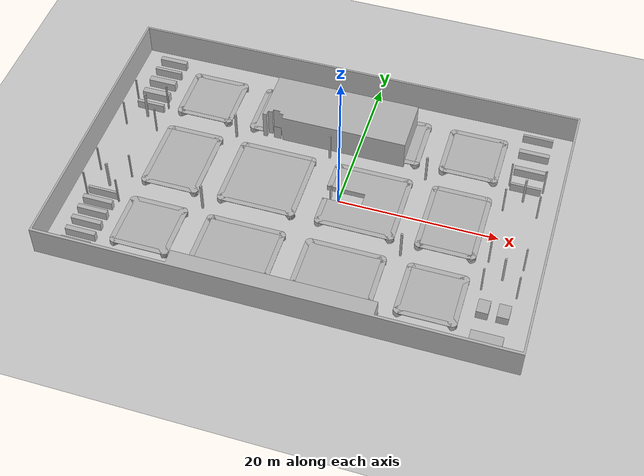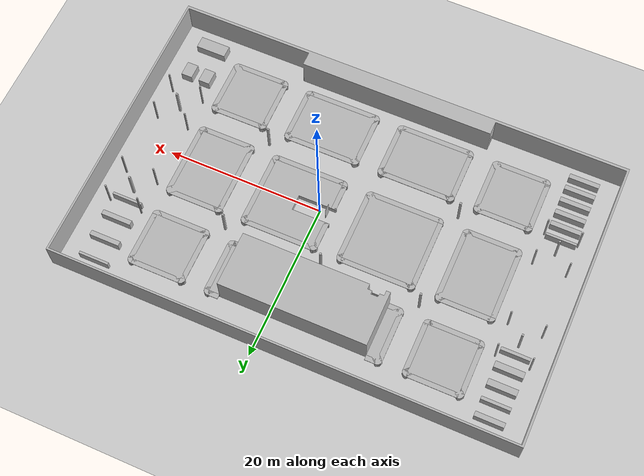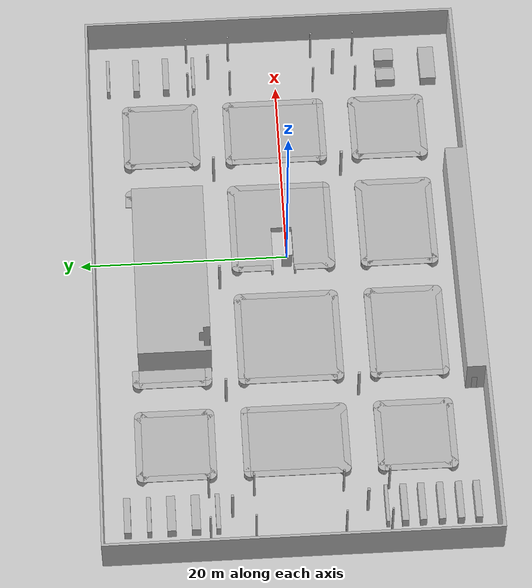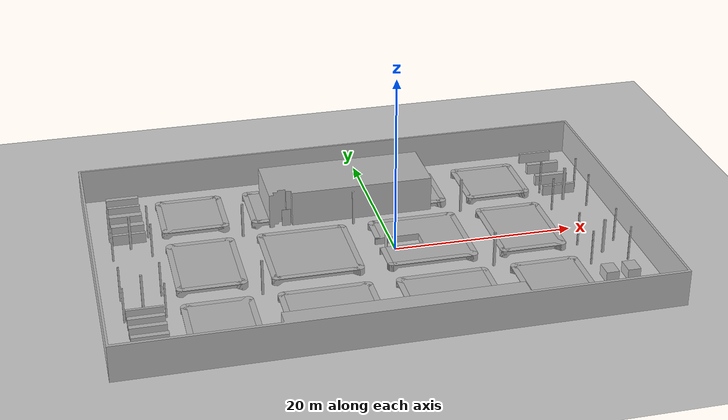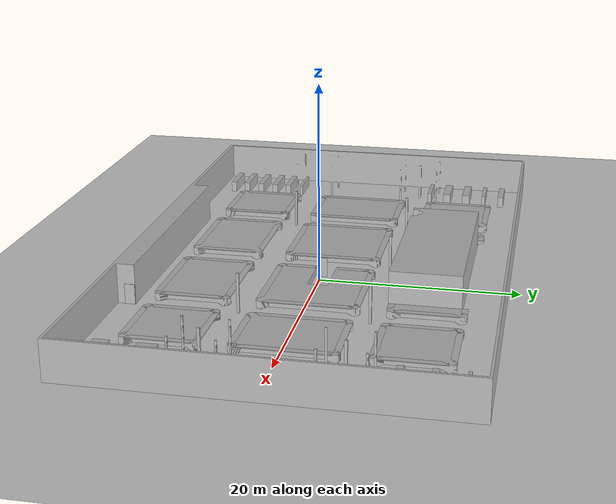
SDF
<sdf version="1.6">
 <world name="tue_library">
  <light name="sun" type="directional">
   <direction>0.5 0.1 -0.9</direction>
   <pose>0 0 10 0 0 0</pose>
   <specular>0.2 0.2 0.2 1</specular>
   <diffuse>0.8 0.8 0.8 1</diffuse>
   <attenuation>
    <range>1000</range>
    <quadratic>0.001</quadratic>
    <constant>0.9</constant>
    <linear>0.01</linear>
   </attenuation>
  </light>
  <include><name>floor</name><uri>model://ground_plane</uri></include>
  <include><name>walls</name><uri>model://tue_library/walls</uri></include>
  <include><name>desks-support</name><uri>model://tue_library/desks.support</uri></include>
  <include><pose>0 0 0.695 0 0 0</pose><name>desks-top</name><uri>model://tue_library/desks.top</uri></include>
  <include>
   <pose>-27.97 16.4 0 0 0 0</pose>
   <name>book_xxl</name>
   <uri>model://tue_library/book_xxl</uri>
  </include>
  <include><pose>21.65 16.7 0 0 0 0</pose><name>theses</name><uri>model://tue_library/theses</uri></include>
  <include>
   <pose>21.65 -15.29 0 0 0 0</pose>
   <name>cartographics</name>
   <uri>model://tue_library/cartographics</uri>
  </include>
  <include>
   <pose>-27.97 -15.97 0 0 0 0</pose>
   <name>journals</name>
   <uri>model://tue_library/journals</uri>
  </include>
  <include><pose>-10.5 8.0 0 0 0 0</pose><name>elevator</name><uri>model://tue_library/door</uri></include>
  <include><pose>-6.8 8.0 0 0 0 0</pose><name>lecture_room_1</name><uri>model://tue_library/door</uri></include>
  <include><pose>0.5 8.0 0 0 0 0</pose><name>lecture_room_2</name><uri>model://tue_library/door</uri></include>
  <include><pose>4.2 8.0 0 0 0 0</pose><name>copier</name><uri>model://tue_library/door</uri></include>
  <include><pose>-1.0 0.1 0 0 0 1.57</pose><name>stairway</name><uri>model://tue_library/door</uri></include>
  <include>
   <pose>9.3 -16.5 0 0 0 1.57</pose>
   <name>meeting_room_1</name>
   <uri>model://tue_library/door</uri>
  </include>
  <include>
   <pose>-15.5 -16.5 0 0 0 1.57</pose>
   <name>meeting_room_4</name>
   <uri>model://tue_library/door</uri>
  </include>
  <physics type="ode">
   <real_time_update_rate>333.0</real_time_update_rate>
   <max_step_size>0.003</max_step_size>
   <ode><constraints><cfm>0.0001</cfm></constraints><solver><type>quick</type><iters>100</iters></solver></ode>
  </physics>
 </world>
</sdf>

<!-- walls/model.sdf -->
<sdf version="1.6">
  <model name="tue_library/walls">
    <link name="1_link">
      <collision name="1_col">
        <geometry>
          <mesh>
            <uri>model://tue_library/walls/heightmap.stl</uri>
          </mesh>
        </geometry>
      </collision>
      <visual name="1_vis">
        <geometry>
          <mesh>
            <uri>model://tue_library/walls/heightmap.stl</uri>
          </mesh>
        </geometry>
      </visual>
      <pose>0 0 0 0 0 0</pose>
    </link>
    <static>true</static>
  </model>
</sdf>

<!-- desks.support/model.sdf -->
<sdf version="1.6">
  <model name="tue_library/desks.support">
    <link name="1_link">
      <collision name="1_col">
        <geometry>
          <mesh>
            <uri>model://tue_library/desks.support/shape/heightmap.stl</uri>
          </mesh>
        </geometry>
      </collision>
      <visual name="1_vis">
        <geometry>
          <mesh>
            <uri>model://tue_library/desks.support/shape/heightmap.stl</uri>
          </mesh>
        </geometry>
      </visual>
      <pose>0 0 0 0 0 0</pose>
    </link>
    <static>true</static>
  </model>
</sdf>

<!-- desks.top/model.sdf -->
<sdf version="1.6">
  <model name="tue_library/desks.top">
    <link name="1_link">
      <collision name="1_col">
        <geometry>
          <mesh>
            <uri>model://tue_library/desks.top/shape/heightmap.stl</uri>
          </mesh>
        </geometry>
      </collision>
      <visual name="1_vis">
        <geometry>
          <mesh>
            <uri>model://tue_library/desks.top/shape/heightmap.stl</uri>
          </mesh>
        </geometry>
      </visual>
      <pose>0 0 0 0 0 0</pose>
    </link>
    <static>true</static>
  </model>
</sdf>

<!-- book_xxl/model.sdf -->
<sdf version="1.6">
  <model name="tue_library/book_xxl">
    <link name="1_link">
      <collision name="1_col">
        <geometry>
          <box>
            <size>3.62 0.625 1.2</size>
          </box>
        </geometry>
      </collision>
      <visual name="1_vis">
        <geometry>
          <box>
            <size>3.62 0.625 1.2</size>
          </box>
        </geometry>
      </visual>
      <pose>0 0 0.6 0 0 0</pose>
    </link>
    <link name="2_link">
      <collision name="2_col">
        <geometry>
          <box>
            <size>3.62 0.405 1.2</size>
          </box>
        </geometry>
      </collision>
      <visual name="2_vis">
        <geometry>
          <box>
            <size>3.62 0.405 1.2</size>
          </box>
        </geometry>
      </visual>
      <pose>0 -2.0 0.6 0 0 0</pose>
    </link>
    <link name="3_link">
      <collision name="3_col">
        <geometry>
          <box>
            <size>3.62 0.81 1.2</size>
          </box>
        </geometry>
      </collision>
      <visual name="3_vis">
        <geometry>
          <box>
            <size>3.62 0.81 1.2</size>
          </box>
        </geometry>
      </visual>
      <pose>0 -4.05 0.6 0 0 0</pose>
    </link>
    <link name="4_link">
      <collision name="4_col">
        <geometry>
          <box>
            <size>3.62 0.81 1.2</size>
          </box>
        </geometry>
      </collision>
      <visual name="4_vis">
        <geometry>
          <box>
            <size>3.62 0.81 1.2</size>
          </box>
        </geometry>
      </visual>
      <pose>0 -6.31 0.6 0 0 0</pose>
    </link>
    <link name="5_link">
      <collision name="5_col">
        <geometry>
          <box>
            <size>3.62 0.405 1.2</size>
          </box>
        </geometry>
      </collision>
      <visual name="5_vis">
        <geometry>
          <box>
            <size>3.62 0.405 1.2</size>
          </box>
        </geometry>
      </visual>
      <pose>0 -8.36 0.6 0 0 0</pose>
    </link>
    <static>true</static>
  </model>
</sdf>

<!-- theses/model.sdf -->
<sdf version="1.6">
  <model name="tue_library/theses">
    <link name="1_link">
      <collision name="1_col">
        <geometry>
          <box>
            <size>3.82 0.305 1.2</size>
          </box>
        </geometry>
      </collision>
      <visual name="1_vis">
        <geometry>
          <box>
            <size>3.82 0.305 1.2</size>
          </box>
        </geometry>
      </visual>
      <pose>0 0 0.6 0 0 0</pose>
    </link>
    <link name="2_link">
      <collision name="2_col">
        <geometry>
          <box>
            <size>3.82 0.61 1.2</size>
          </box>
        </geometry>
      </collision>
      <visual name="2_vis">
        <geometry>
          <box>
            <size>3.82 0.61 1.2</size>
          </box>
        </geometry>
      </visual>
      <pose>0 -2.8 0.6 0 0 0</pose>
    </link>
    <link name="3_link">
      <collision name="3_col">
        <geometry>
          <box>
            <size>3.82 0.61 1.2</size>
          </box>
        </geometry>
      </collision>
      <visual name="3_vis">
        <geometry>
          <box>
            <size>3.82 0.61 1.2</size>
          </box>
        </geometry>
      </visual>
      <pose>0 -5.76 0.6 0 0 0</pose>
    </link>
    <link name="4_link">
      <collision name="4_col">
        <geometry>
          <box>
            <size>3.82 0.305 1.2</size>
          </box>
        </geometry>
      </collision>
      <visual name="4_vis">
        <geometry>
          <box>
            <size>3.82 0.305 1.2</size>
          </box>
        </geometry>
      </visual>
      <pose>0 -8.5 0.6 0 0 0</pose>
    </link>
    <static>true</static>
  </model>
</sdf>

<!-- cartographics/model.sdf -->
<sdf version="1.6">
  <model name="tue_library/cartographics">
    <link name="1_link">
      <collision name="1_col">
        <geometry>
          <box>
            <size>3.82 1.525 1.2</size>
          </box>
        </geometry>
      </collision>
      <visual name="1_vis">
        <geometry>
          <box>
            <size>3.82 1.525 1.2</size>
          </box>
        </geometry>
      </visual>
      <pose>0 0 0.6 0 0 0</pose>
    </link>
    <link name="2_link">
      <collision name="2_col">
        <geometry>
          <box>
            <size>1.42 1.86 1.2</size>
          </box>
        </geometry>
      </collision>
      <visual name="2_vis">
        <geometry>
          <box>
            <size>1.42 1.86 1.2</size>
          </box>
        </geometry>
      </visual>
      <pose>1.2 4.26 0.6 0 0 0</pose>
    </link>
    <link name="3_link">
      <collision name="3_col">
        <geometry>
          <box>
            <size>1.42 1.86 1.2</size>
          </box>
        </geometry>
      </collision>
      <visual name="3_vis">
        <geometry>
          <box>
            <size>1.42 1.86 1.2</size>
          </box>
        </geometry>
      </visual>
      <pose>-1.2 4.26 0.6 0 0 0</pose>
    </link>
    <static>true</static>
  </model>
</sdf>

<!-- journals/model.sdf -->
<sdf version="1.6">
  <model name="tue_library/journals">
    <link name="1_link">
      <collision name="1_col">
        <geometry>
          <box>
            <size>3.82 0.61 1.2</size>
          </box>
        </geometry>
      </collision>
      <visual name="1_vis">
        <geometry>
          <box>
            <size>3.82 0.61 1.2</size>
          </box>
        </geometry>
      </visual>
      <pose>0 0 0.6 0 0 0</pose>
    </link>
    <link name="2_link">
      <collision name="2_col">
        <geometry>
          <box>
            <size>3.82 0.61 1.2</size>
          </box>
        </geometry>
      </collision>
      <visual name="2_vis">
        <geometry>
          <box>
            <size>3.82 0.61 1.2</size>
          </box>
        </geometry>
      </visual>
      <pose>0 1.65 0.6 0 0 0</pose>
    </link>
    <link name="3_link">
      <collision name="3_col">
        <geometry>
          <box>
            <size>3.82 0.61 1.2</size>
          </box>
        </geometry>
      </collision>
      <visual name="3_vis">
        <geometry>
          <box>
            <size>3.82 0.61 1.2</size>
          </box>
        </geometry>
      </visual>
      <pose>0 3.4 0.6 0 0 0</pose>
    </link>
    <link name="4_link">
      <collision name="4_col">
        <geometry>
          <box>
            <size>3.82 0.61 1.2</size>
          </box>
        </geometry>
      </collision>
      <visual name="4_vis">
        <geometry>
          <box>
            <size>3.82 0.61 1.2</size>
          </box>
        </geometry>
      </visual>
      <pose>0 5.15 0.6 0 0 0</pose>
    </link>
    <link name="5_link">
      <collision name="5_col">
        <geometry>
          <box>
            <size>3.82 0.61 1.2</size>
          </box>
        </geometry>
      </collision>
      <visual name="5_vis">
        <geometry>
          <box>
            <size>3.82 0.61 1.2</size>
          </box>
        </geometry>
      </visual>
      <pose>0 6.8 0.6 0 0 0</pose>
    </link>
    <link name="6_link">
      <collision name="6_col">
        <geometry>
          <box>
            <size>3.82 0.305 1.2</size>
          </box>
        </geometry>
      </collision>
      <visual name="6_vis">
        <geometry>
          <box>
            <size>3.82 0.305 1.2</size>
          </box>
        </geometry>
      </visual>
      <pose>0 8.4 0.6 0 0 0</pose>
    </link>
    <static>true</static>
  </model>
</sdf>

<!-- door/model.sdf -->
<sdf version="1.6">
  <model name="tue_library/door">
    <link name="1_link">
      <collision name="1_col">
        <geometry>
          <box>
            <size>1.0 0.05 2.0</size>
          </box>
        </geometry>
      </collision>
      <visual name="1_vis">
        <geometry>
          <box>
            <size>1.0 0.05 2.0</size>
          </box>
        </geometry>
      </visual>
      <pose>0 0 1.0 0 0 0</pose>
    </link>
    <static>true</static>
  </model>
</sdf>
